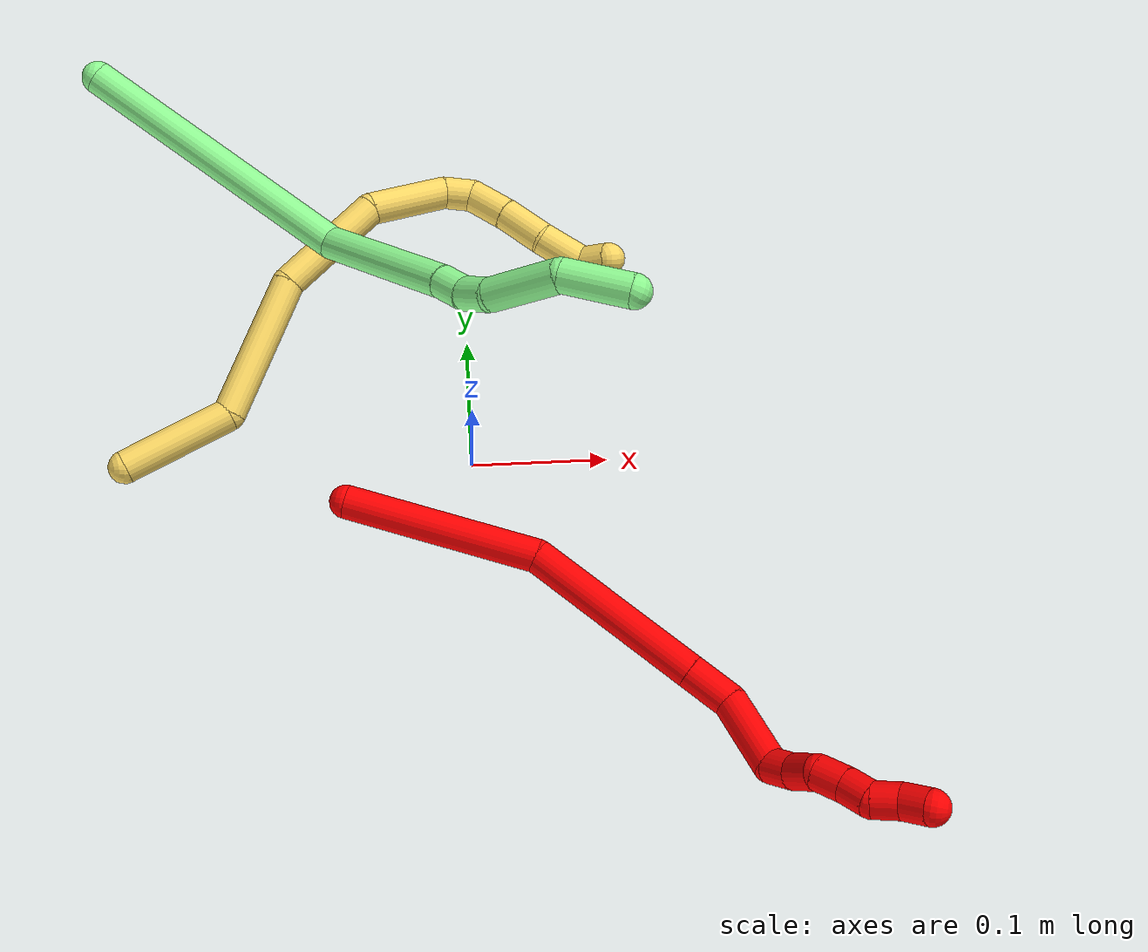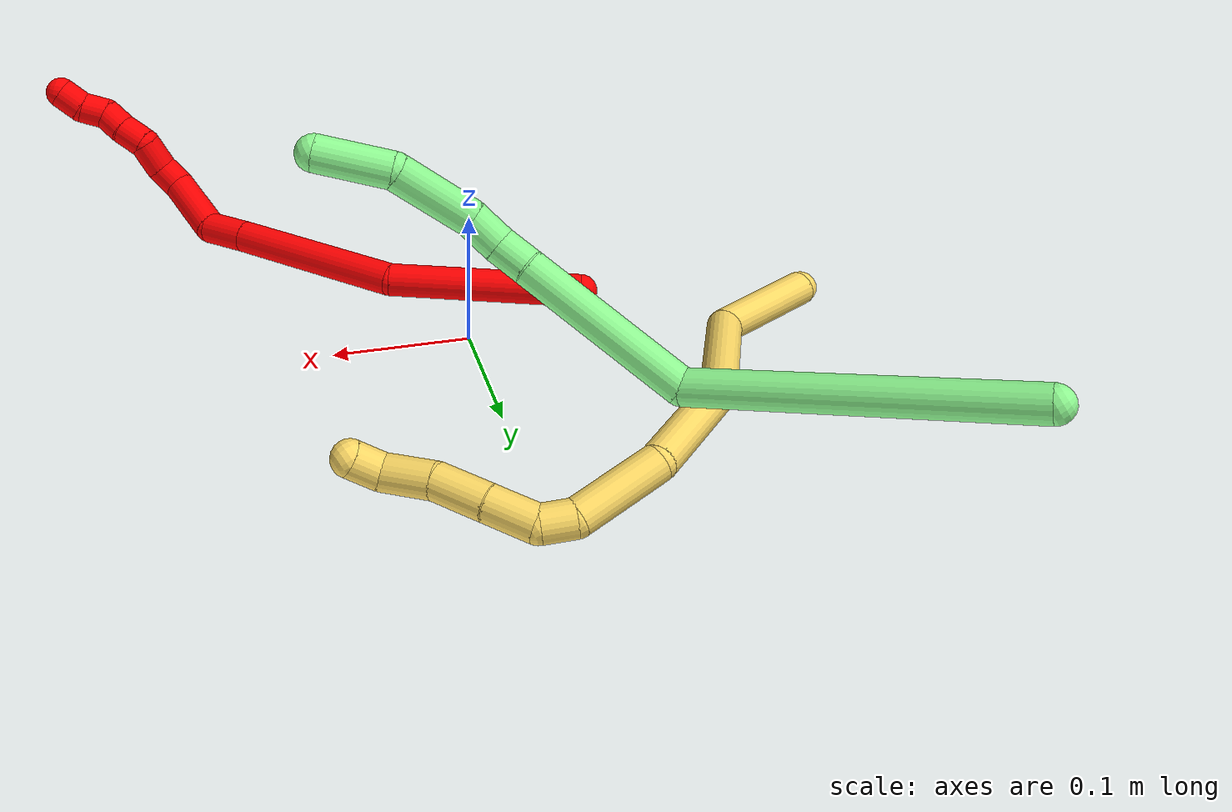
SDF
<sdf version="1.7">
 <world name="default">
  <model name="2">
   <static>0</static>
   <link name="2">
    <collision name="collision-cylinder-e_1_1_4">
     <pose>0.017081 -0.0007 0.070695 0.009907 0.237054 0.00118</pose>
     <geometry><cylinder><radius>0.0125</radius><length>0.145466</length></cylinder></geometry>
     <surface>
      <friction><ode><mu>1.16</mu><mu2>1.16</mu2><slip1>0</slip1><slip2>0</slip2></ode></friction>
      <contact><ode><kp>1e+06</kp><kd>1</kd><max_vel>0</max_vel><min_depth>0.001</min_depth></ode></contact>
     </surface>
    </collision>
    <visual name="visual-cylinder-e_1_1_4">
     <pose>0.017081 -0.0007 0.070695 0.009907 0.237054 0.00118</pose>
     <geometry><cylinder><radius>0.0125</radius><length>0.145466</length></cylinder></geometry>
     <material><ambient>1 0 0 1</ambient></material>
    </visual>
    <collision name="collision-cylinder-e_2_4_5">
     <pose>0.050827 -0.027881 0.202049 0.411603 0.246675 0.051746</pose>
     <geometry><cylinder><radius>0.0125</radius><length>0.136505</length></cylinder></geometry>
     <surface>
      <friction><ode><mu>1.16</mu><mu2>1.16</mu2><slip1>0</slip1><slip2>0</slip2></ode></friction>
      <contact><ode><kp>1e+06</kp><kd>1</kd><max_vel>0</max_vel><min_depth>0.001</min_depth></ode></contact>
     </surface>
    </collision>
    <visual name="visual-cylinder-e_2_4_5">
     <pose>0.050827 -0.027881 0.202049 0.411603 0.246675 0.051746</pose>
     <geometry><cylinder><radius>0.0125</radius><length>0.136505</length></cylinder></geometry>
     <material><ambient>1 0 0 1</ambient></material>
    </visual>
    <collision name="collision-cylinder-e_3_5_6">
     <pose>0.072092 -0.060858 0.277934 0.403345 0.270946 0.055722</pose>
     <geometry><cylinder><radius>0.0125</radius><length>0.034363</length></cylinder></geometry>
     <surface>
      <friction><ode><mu>1.16</mu><mu2>1.16</mu2><slip1>0</slip1><slip2>0</slip2></ode></friction>
      <contact><ode><kp>1e+06</kp><kd>1</kd><max_vel>0</max_vel><min_depth>0.001</min_depth></ode></contact>
     </surface>
    </collision>
    <visual name="visual-cylinder-e_3_5_6">
     <pose>0.072092 -0.060858 0.277934 0.403345 0.270946 0.055722</pose>
     <geometry><cylinder><radius>0.0125</radius><length>0.034363</length></cylinder></geometry>
     <material><ambient>1 0 0 1</ambient></material>
    </visual>
    <collision name="collision-cylinder-e_4_6_7">
     <pose>0.075146 -0.088302 0.311835 0.842677 -0.054969 -0.024641</pose>
     <geometry><cylinder><radius>0.0125</radius><length>0.056209</length></cylinder></geometry>
     <surface>
      <friction><ode><mu>1.16</mu><mu2>1.16</mu2><slip1>0</slip1><slip2>0</slip2></ode></friction>
      <contact><ode><kp>1e+06</kp><kd>1</kd><max_vel>0</max_vel><min_depth>0.001</min_depth></ode></contact>
     </surface>
    </collision>
    <visual name="visual-cylinder-e_4_6_7">
     <pose>0.075146 -0.088302 0.311835 0.842677 -0.054969 -0.024641</pose>
     <geometry><cylinder><radius>0.0125</radius><length>0.056209</length></cylinder></geometry>
     <material><ambient>1 0 0 1</ambient></material>
    </visual>
    <collision name="collision-cylinder-e_5_7_8">
     <pose>0.068822 -0.111784 0.33939 0.278114 -0.477591 -0.068118</pose>
     <geometry><cylinder><radius>0.0125</radius><length>0.020798</length></cylinder></geometry>
     <surface>
      <friction><ode><mu>1.16</mu><mu2>1.16</mu2><slip1>0</slip1><slip2>0</slip2></ode></friction>
      <contact><ode><kp>1e+06</kp><kd>1</kd><max_vel>0</max_vel><min_depth>0.001</min_depth></ode></contact>
     </surface>
    </collision>
    <visual name="visual-cylinder-e_5_7_8">
     <pose>0.068822 -0.111784 0.33939 0.278114 -0.477591 -0.068118</pose>
     <geometry><cylinder><radius>0.0125</radius><length>0.020798</length></cylinder></geometry>
     <material><ambient>1 0 0 1</ambient></material>
    </visual>
    <collision name="collision-cylinder-e_6_8_9">
     <pose>0.055403 -0.116249 0.35684 0.221501 -0.777041 -0.090976</pose>
     <geometry><cylinder><radius>0.0125</radius><length>0.024641</length></cylinder></geometry>
     <surface>
      <friction><ode><mu>1.16</mu><mu2>1.16</mu2><slip1>0</slip1><slip2>0</slip2></ode></friction>
      <contact><ode><kp>1e+06</kp><kd>1</kd><max_vel>0</max_vel><min_depth>0.001</min_depth></ode></contact>
     </surface>
    </collision>
    <visual name="visual-cylinder-e_6_8_9">
     <pose>0.055403 -0.116249 0.35684 0.221501 -0.777041 -0.090976</pose>
     <geometry><cylinder><radius>0.0125</radius><length>0.024641</length></cylinder></geometry>
     <material><ambient>1 0 0 1</ambient></material>
    </visual>
    <collision name="collision-cylinder-e_7_9_10">
     <pose>0.044697 -0.121491 0.37547 0.31801 -0.19276 -0.031004</pose>
     <geometry><cylinder><radius>0.0125</radius><length>0.021581</length></cylinder></geometry>
     <surface>
      <friction><ode><mu>1.16</mu><mu2>1.16</mu2><slip1>0</slip1><slip2>0</slip2></ode></friction>
      <contact><ode><kp>1e+06</kp><kd>1</kd><max_vel>0</max_vel><min_depth>0.001</min_depth></ode></contact>
     </surface>
    </collision>
    <visual name="visual-cylinder-e_7_9_10">
     <pose>0.044697 -0.121491 0.37547 0.31801 -0.19276 -0.031004</pose>
     <geometry><cylinder><radius>0.0125</radius><length>0.021581</length></cylinder></geometry>
     <material><ambient>1 0 0 1</ambient></material>
    </visual>
    <collision name="collision-cylinder-e_8_10_11">
     <pose>0.040068 -0.129063 0.394318 0.451461 -0.256557 -0.059225</pose>
     <geometry><cylinder><radius>0.0125</radius><length>0.020194</length></cylinder></geometry>
     <surface>
      <friction><ode><mu>1.16</mu><mu2>1.16</mu2><slip1>0</slip1><slip2>0</slip2></ode></friction>
      <contact><ode><kp>1e+06</kp><kd>1</kd><max_vel>0</max_vel><min_depth>0.001</min_depth></ode></contact>
     </surface>
    </collision>
    <visual name="visual-cylinder-e_8_10_11">
     <pose>0.040068 -0.129063 0.394318 0.451461 -0.256557 -0.059225</pose>
     <geometry><cylinder><radius>0.0125</radius><length>0.020194</length></cylinder></geometry>
     <material><ambient>1 0 0 1</ambient></material>
    </visual>
    <collision name="collision-cylinder-e_9_11_12">
     <pose>0.03654 -0.132131 0.412994 -0.120107 -0.09667 0.005817</pose>
     <geometry><cylinder><radius>0.0125</radius><length>0.020013</length></cylinder></geometry>
     <surface>
      <friction><ode><mu>1.16</mu><mu2>1.16</mu2><slip1>0</slip1><slip2>0</slip2></ode></friction>
      <contact><ode><kp>1e+06</kp><kd>1</kd><max_vel>0</max_vel><min_depth>0.001</min_depth></ode></contact>
     </surface>
    </collision>
    <visual name="visual-cylinder-e_9_11_12">
     <pose>0.03654 -0.132131 0.412994 -0.120107 -0.09667 0.005817</pose>
     <geometry><cylinder><radius>0.0125</radius><length>0.020013</length></cylinder></geometry>
     <material><ambient>1 0 0 1</ambient></material>
    </visual>
    <collision name="collision-cylinder-e_10_12_2">
     <pose>0.032032 -0.132432 0.432237 0.158381 -0.35781 -0.028699</pose>
     <geometry><cylinder><radius>0.0125</radius><length>0.020229</length></cylinder></geometry>
     <surface>
      <friction><ode><mu>1.16</mu><mu2>1.16</mu2><slip1>0</slip1><slip2>0</slip2></ode></friction>
      <contact><ode><kp>1e+06</kp><kd>1</kd><max_vel>0</max_vel><min_depth>0.001</min_depth></ode></contact>
     </surface>
    </collision>
    <visual name="visual-cylinder-e_10_12_2">
     <pose>0.032032 -0.132432 0.432237 0.158381 -0.35781 -0.028699</pose>
     <geometry><cylinder><radius>0.0125</radius><length>0.020229</length></cylinder></geometry>
     <material><ambient>1 0 0 1</ambient></material>
    </visual>
    <collision name="collision-sphere-2">
     <pose>0.028489 -0.133926 0.441593 0 -0 0</pose>
     <geometry><sphere><radius>0.0125</radius></sphere></geometry>
     <surface>
      <friction><ode><mu>1.16</mu><mu2>1.16</mu2><slip1>0</slip1><slip2>0</slip2></ode></friction>
      <contact><ode><kp>1e+06</kp><kd>1</kd><max_vel>0</max_vel><min_depth>0.001</min_depth></ode></contact>
     </surface>
    </collision>
    <visual name="visual-sphere-2">
     <pose>0.028489 -0.133926 0.441593 0 -0 0</pose>
     <geometry><sphere><radius>0.0125</radius></sphere></geometry>
     <material><ambient>1 0 0 1</ambient></material>
    </visual>
    <collision name="collision-sphere-12">
     <pose>0.035574 -0.130938 0.422882 0 -0 0</pose>
     <geometry><sphere><radius>0.0125</radius></sphere></geometry>
     <surface>
      <friction><ode><mu>1.16</mu><mu2>1.16</mu2><slip1>0</slip1><slip2>0</slip2></ode></friction>
      <contact><ode><kp>1e+06</kp><kd>1</kd><max_vel>0</max_vel><min_depth>0.001</min_depth></ode></contact>
     </surface>
    </collision>
    <visual name="visual-sphere-12">
     <pose>0.035574 -0.130938 0.422882 0 -0 0</pose>
     <geometry><sphere><radius>0.0125</radius></sphere></geometry>
     <material><ambient>1 0 0 1</ambient></material>
    </visual>
    <collision name="collision-sphere-11">
     <pose>0.037506 -0.133324 0.403106 0 -0 0</pose>
     <geometry><sphere><radius>0.0125</radius></sphere></geometry>
     <surface>
      <friction><ode><mu>1.16</mu><mu2>1.16</mu2><slip1>0</slip1><slip2>0</slip2></ode></friction>
      <contact><ode><kp>1e+06</kp><kd>1</kd><max_vel>0</max_vel><min_depth>0.001</min_depth></ode></contact>
     </surface>
    </collision>
    <visual name="visual-sphere-11">
     <pose>0.037506 -0.133324 0.403106 0 -0 0</pose>
     <geometry><sphere><radius>0.0125</radius></sphere></geometry>
     <material><ambient>1 0 0 1</ambient></material>
    </visual>
    <collision name="collision-sphere-10">
     <pose>0.04263 -0.124802 0.38553 0 -0 0</pose>
     <geometry><sphere><radius>0.0125</radius></sphere></geometry>
     <surface>
      <friction><ode><mu>1.16</mu><mu2>1.16</mu2><slip1>0</slip1><slip2>0</slip2></ode></friction>
      <contact><ode><kp>1e+06</kp><kd>1</kd><max_vel>0</max_vel><min_depth>0.001</min_depth></ode></contact>
     </surface>
    </collision>
    <visual name="visual-sphere-10">
     <pose>0.04263 -0.124802 0.38553 0 -0 0</pose>
     <geometry><sphere><radius>0.0125</radius></sphere></geometry>
     <material><ambient>1 0 0 1</ambient></material>
    </visual>
    <collision name="collision-sphere-9">
     <pose>0.046764 -0.118179 0.36541 0 -0 0</pose>
     <geometry><sphere><radius>0.0125</radius></sphere></geometry>
     <surface>
      <friction><ode><mu>1.16</mu><mu2>1.16</mu2><slip1>0</slip1><slip2>0</slip2></ode></friction>
      <contact><ode><kp>1e+06</kp><kd>1</kd><max_vel>0</max_vel><min_depth>0.001</min_depth></ode></contact>
     </surface>
    </collision>
    <visual name="visual-sphere-9">
     <pose>0.046764 -0.118179 0.36541 0 -0 0</pose>
     <geometry><sphere><radius>0.0125</radius></sphere></geometry>
     <material><ambient>1 0 0 1</ambient></material>
    </visual>
    <collision name="collision-sphere-4">
     <pose>0.034161 -0.001401 0.14139 0 -0 0</pose>
     <geometry><sphere><radius>0.0125</radius></sphere></geometry>
     <surface>
      <friction><ode><mu>1.16</mu><mu2>1.16</mu2><slip1>0</slip1><slip2>0</slip2></ode></friction>
      <contact><ode><kp>1e+06</kp><kd>1</kd><max_vel>0</max_vel><min_depth>0.001</min_depth></ode></contact>
     </surface>
    </collision>
    <visual name="visual-sphere-4">
     <pose>0.034161 -0.001401 0.14139 0 -0 0</pose>
     <geometry><sphere><radius>0.0125</radius></sphere></geometry>
     <material><ambient>1 0 0 1</ambient></material>
    </visual>
    <collision name="collision-sphere-1">
     <geometry><sphere><radius>0.0125</radius></sphere></geometry>
     <surface>
      <friction><ode><mu>1.16</mu><mu2>1.16</mu2><slip1>0</slip1><slip2>0</slip2></ode></friction>
      <contact><ode><kp>1e+06</kp><kd>1</kd><max_vel>0</max_vel><min_depth>0.001</min_depth></ode></contact>
     </surface>
    </collision>
    <visual name="visual-sphere-1">
     <geometry><sphere><radius>0.0125</radius></sphere></geometry>
     <material><ambient>1 0 0 1</ambient></material>
    </visual>
    <collision name="collision-sphere-8">
     <pose>0.064042 -0.11432 0.348271 0 -0 0</pose>
     <geometry><sphere><radius>0.0125</radius></sphere></geometry>
     <surface>
      <friction><ode><mu>1.16</mu><mu2>1.16</mu2><slip1>0</slip1><slip2>0</slip2></ode></friction>
      <contact><ode><kp>1e+06</kp><kd>1</kd><max_vel>0</max_vel><min_depth>0.001</min_depth></ode></contact>
     </surface>
    </collision>
    <visual name="visual-sphere-8">
     <pose>0.064042 -0.11432 0.348271 0 -0 0</pose>
     <geometry><sphere><radius>0.0125</radius></sphere></geometry>
     <material><ambient>1 0 0 1</ambient></material>
    </visual>
    <collision name="collision-sphere-5">
     <pose>0.067493 -0.054361 0.262708 0 -0 0</pose>
     <geometry><sphere><radius>0.0125</radius></sphere></geometry>
     <surface>
      <friction><ode><mu>1.16</mu><mu2>1.16</mu2><slip1>0</slip1><slip2>0</slip2></ode></friction>
      <contact><ode><kp>1e+06</kp><kd>1</kd><max_vel>0</max_vel><min_depth>0.001</min_depth></ode></contact>
     </surface>
    </collision>
    <visual name="visual-sphere-5">
     <pose>0.067493 -0.054361 0.262708 0 -0 0</pose>
     <geometry><sphere><radius>0.0125</radius></sphere></geometry>
     <material><ambient>1 0 0 1</ambient></material>
    </visual>
    <collision name="collision-sphere-6">
     <pose>0.07669 -0.067356 0.29316 0 -0 0</pose>
     <geometry><sphere><radius>0.0125</radius></sphere></geometry>
     <surface>
      <friction><ode><mu>1.16</mu><mu2>1.16</mu2><slip1>0</slip1><slip2>0</slip2></ode></friction>
      <contact><ode><kp>1e+06</kp><kd>1</kd><max_vel>0</max_vel><min_depth>0.001</min_depth></ode></contact>
     </surface>
    </collision>
    <visual name="visual-sphere-6">
     <pose>0.07669 -0.067356 0.29316 0 -0 0</pose>
     <geometry><sphere><radius>0.0125</radius></sphere></geometry>
     <material><ambient>1 0 0 1</ambient></material>
    </visual>
    <collision name="collision-sphere-7">
     <pose>0.073602 -0.109248 0.330509 0 -0 0</pose>
     <geometry><sphere><radius>0.0125</radius></sphere></geometry>
     <surface>
      <friction><ode><mu>1.16</mu><mu2>1.16</mu2><slip1>0</slip1><slip2>0</slip2></ode></friction>
      <contact><ode><kp>1e+06</kp><kd>1</kd><max_vel>0</max_vel><min_depth>0.001</min_depth></ode></contact>
     </surface>
    </collision>
    <visual name="visual-sphere-7">
     <pose>0.073602 -0.109248 0.330509 0 -0 0</pose>
     <geometry><sphere><radius>0.0125</radius></sphere></geometry>
     <material><ambient>1 0 0 1</ambient></material>
    </visual>
    <inertial>
     <pose>0.044147 -0.053407 0.22774 0 -0 0</pose>
     <mass>0.5</mass>
     <inertia>
      <ixx>0.000509</ixx>
      <ixy>0</ixy>
      <ixz>0</ixz>
      <iyy>0.000488</iyy>
      <iyz>0</iyz>
      <izz>2.6e-05</izz>
     </inertia>
    </inertial>
   </link>
   <pose>-0.093564 -0.029596 0.011491 -0.417653 1.31339 -0.732692</pose>
  </model>
  <model name="5">
   <static>0</static>
   <link name="5">
    <collision name="collision-cylinder-e_1_1_4">
     <pose>0.003102 0.017378 0.038913 -0.420007 0.072659 -0.015493</pose>
     <geometry><cylinder><radius>0.0125</radius><length>0.085461</length></cylinder></geometry>
     <surface>
      <friction><ode><mu>1.16</mu><mu2>1.16</mu2><slip1>0</slip1><slip2>0</slip2></ode></friction>
      <contact><ode><kp>1e+06</kp><kd>1</kd><max_vel>0</max_vel><min_depth>0.001</min_depth></ode></contact>
     </surface>
    </collision>
    <visual name="visual-cylinder-e_1_1_4">
     <pose>0.003102 0.017378 0.038913 -0.420007 0.072659 -0.015493</pose>
     <geometry><cylinder><radius>0.0125</radius><length>0.085461</length></cylinder></geometry>
     <material><ambient>1 0.858824 0.4 1</ambient></material>
    </visual>
    <collision name="collision-cylinder-e_2_4_5">
     <pose>0.039671 0.067335 0.1081 -0.822071 0.645108 -0.289319</pose>
     <geometry><cylinder><radius>0.0125</radius><length>0.111318</length></cylinder></geometry>
     <surface>
      <friction><ode><mu>1.16</mu><mu2>1.16</mu2><slip1>0</slip1><slip2>0</slip2></ode></friction>
      <contact><ode><kp>1e+06</kp><kd>1</kd><max_vel>0</max_vel><min_depth>0.001</min_depth></ode></contact>
     </surface>
    </collision>
    <visual name="visual-cylinder-e_2_4_5">
     <pose>0.039671 0.067335 0.1081 -0.822071 0.645108 -0.289319</pose>
     <geometry><cylinder><radius>0.0125</radius><length>0.111318</length></cylinder></geometry>
     <material><ambient>1 0.858824 0.4 1</ambient></material>
    </visual>
    <collision name="collision-cylinder-e_3_5_6">
     <pose>0.088772 0.120001 0.174683 -0.505291 0.360321 -0.093972</pose>
     <geometry><cylinder><radius>0.0125</radius><length>0.088686</length></cylinder></geometry>
     <surface>
      <friction><ode><mu>1.16</mu><mu2>1.16</mu2><slip1>0</slip1><slip2>0</slip2></ode></friction>
      <contact><ode><kp>1e+06</kp><kd>1</kd><max_vel>0</max_vel><min_depth>0.001</min_depth></ode></contact>
     </surface>
    </collision>
    <visual name="visual-cylinder-e_3_5_6">
     <pose>0.088772 0.120001 0.174683 -0.505291 0.360321 -0.093972</pose>
     <geometry><cylinder><radius>0.0125</radius><length>0.088686</length></cylinder></geometry>
     <material><ambient>1 0.858824 0.4 1</ambient></material>
    </visual>
    <collision name="collision-cylinder-e_4_6_7">
     <pose>0.105421 0.144696 0.242353 -0.145916 0.032011 -0.00234</pose>
     <geometry><cylinder><radius>0.0125</radius><length>0.063425</length></cylinder></geometry>
     <surface>
      <friction><ode><mu>1.16</mu><mu2>1.16</mu2><slip1>0</slip1><slip2>0</slip2></ode></friction>
      <contact><ode><kp>1e+06</kp><kd>1</kd><max_vel>0</max_vel><min_depth>0.001</min_depth></ode></contact>
     </surface>
    </collision>
    <visual name="visual-cylinder-e_4_6_7">
     <pose>0.105421 0.144696 0.242353 -0.145916 0.032011 -0.00234</pose>
     <geometry><cylinder><radius>0.0125</radius><length>0.063425</length></cylinder></geometry>
     <material><ambient>1 0.858824 0.4 1</ambient></material>
    </visual>
    <collision name="collision-cylinder-e_5_7_8">
     <pose>0.101678 0.150593 0.283842 -0.126508 -0.436055 0.028063</pose>
     <geometry><cylinder><radius>0.0125</radius><length>0.022531</length></cylinder></geometry>
     <surface>
      <friction><ode><mu>1.16</mu><mu2>1.16</mu2><slip1>0</slip1><slip2>0</slip2></ode></friction>
      <contact><ode><kp>1e+06</kp><kd>1</kd><max_vel>0</max_vel><min_depth>0.001</min_depth></ode></contact>
     </surface>
    </collision>
    <visual name="visual-cylinder-e_5_7_8">
     <pose>0.101678 0.150593 0.283842 -0.126508 -0.436055 0.028063</pose>
     <geometry><cylinder><radius>0.0125</radius><length>0.022531</length></cylinder></geometry>
     <material><ambient>1 0.858824 0.4 1</ambient></material>
    </visual>
    <collision name="collision-cylinder-e_6_8_9">
     <pose>0.082377 0.152958 0.30204 -0.132622 -1.06054 0.077828</pose>
     <geometry><cylinder><radius>0.0125</radius><length>0.033332</length></cylinder></geometry>
     <surface>
      <friction><ode><mu>1.16</mu><mu2>1.16</mu2><slip1>0</slip1><slip2>0</slip2></ode></friction>
      <contact><ode><kp>1e+06</kp><kd>1</kd><max_vel>0</max_vel><min_depth>0.001</min_depth></ode></contact>
     </surface>
    </collision>
    <visual name="visual-cylinder-e_6_8_9">
     <pose>0.082377 0.152958 0.30204 -0.132622 -1.06054 0.077828</pose>
     <geometry><cylinder><radius>0.0125</radius><length>0.033332</length></cylinder></geometry>
     <material><ambient>1 0.858824 0.4 1</ambient></material>
    </visual>
    <collision name="collision-cylinder-e_7_9_10">
     <pose>0.051699 0.153849 0.318523 0.021949 -1.08999 -0.013306</pose>
     <geometry><cylinder><radius>0.0125</radius><length>0.036397</length></cylinder></geometry>
     <surface>
      <friction><ode><mu>1.16</mu><mu2>1.16</mu2><slip1>0</slip1><slip2>0</slip2></ode></friction>
      <contact><ode><kp>1e+06</kp><kd>1</kd><max_vel>0</max_vel><min_depth>0.001</min_depth></ode></contact>
     </surface>
    </collision>
    <visual name="visual-cylinder-e_7_9_10">
     <pose>0.051699 0.153849 0.318523 0.021949 -1.08999 -0.013306</pose>
     <geometry><cylinder><radius>0.0125</radius><length>0.036397</length></cylinder></geometry>
     <material><ambient>1 0.858824 0.4 1</ambient></material>
    </visual>
    <collision name="collision-cylinder-e_8_10_11">
     <pose>0.021428 0.151836 0.338367 0.158673 -0.88467 -0.075276</pose>
     <geometry><cylinder><radius>0.0125</radius><length>0.03654</length></cylinder></geometry>
     <surface>
      <friction><ode><mu>1.16</mu><mu2>1.16</mu2><slip1>0</slip1><slip2>0</slip2></ode></friction>
      <contact><ode><kp>1e+06</kp><kd>1</kd><max_vel>0</max_vel><min_depth>0.001</min_depth></ode></contact>
     </surface>
    </collision>
    <visual name="visual-cylinder-e_8_10_11">
     <pose>0.021428 0.151836 0.338367 0.158673 -0.88467 -0.075276</pose>
     <geometry><cylinder><radius>0.0125</radius><length>0.03654</length></cylinder></geometry>
     <material><ambient>1 0.858824 0.4 1</ambient></material>
    </visual>
    <collision name="collision-cylinder-e_9_11_2">
     <pose>0.000686 0.156653 0.355849 -0.832077 -0.633816 0.287803</pose>
     <geometry><cylinder><radius>0.0125</radius><length>0.022311</length></cylinder></geometry>
     <surface>
      <friction><ode><mu>1.16</mu><mu2>1.16</mu2><slip1>0</slip1><slip2>0</slip2></ode></friction>
      <contact><ode><kp>1e+06</kp><kd>1</kd><max_vel>0</max_vel><min_depth>0.001</min_depth></ode></contact>
     </surface>
    </collision>
    <visual name="visual-cylinder-e_9_11_2">
     <pose>0.000686 0.156653 0.355849 -0.832077 -0.633816 0.287803</pose>
     <geometry><cylinder><radius>0.0125</radius><length>0.022311</length></cylinder></geometry>
     <material><ambient>1 0.858824 0.4 1</ambient></material>
    </visual>
    <collision name="collision-sphere-2">
     <pose>-0.00592 0.163298 0.361901 0 -0 0</pose>
     <geometry><sphere><radius>0.0125</radius></sphere></geometry>
     <surface>
      <friction><ode><mu>1.16</mu><mu2>1.16</mu2><slip1>0</slip1><slip2>0</slip2></ode></friction>
      <contact><ode><kp>1e+06</kp><kd>1</kd><max_vel>0</max_vel><min_depth>0.001</min_depth></ode></contact>
     </surface>
    </collision>
    <visual name="visual-sphere-2">
     <pose>-0.00592 0.163298 0.361901 0 -0 0</pose>
     <geometry><sphere><radius>0.0125</radius></sphere></geometry>
     <material><ambient>1 0.858824 0.4 1</ambient></material>
    </visual>
    <collision name="collision-sphere-11">
     <pose>0.007293 0.150007 0.349796 0 -0 0</pose>
     <geometry><sphere><radius>0.0125</radius></sphere></geometry>
     <surface>
      <friction><ode><mu>1.16</mu><mu2>1.16</mu2><slip1>0</slip1><slip2>0</slip2></ode></friction>
      <contact><ode><kp>1e+06</kp><kd>1</kd><max_vel>0</max_vel><min_depth>0.001</min_depth></ode></contact>
     </surface>
    </collision>
    <visual name="visual-sphere-11">
     <pose>0.007293 0.150007 0.349796 0 -0 0</pose>
     <geometry><sphere><radius>0.0125</radius></sphere></geometry>
     <material><ambient>1 0.858824 0.4 1</ambient></material>
    </visual>
    <collision name="collision-sphere-10">
     <pose>0.035564 0.153665 0.326937 0 -0 0</pose>
     <geometry><sphere><radius>0.0125</radius></sphere></geometry>
     <surface>
      <friction><ode><mu>1.16</mu><mu2>1.16</mu2><slip1>0</slip1><slip2>0</slip2></ode></friction>
      <contact><ode><kp>1e+06</kp><kd>1</kd><max_vel>0</max_vel><min_depth>0.001</min_depth></ode></contact>
     </surface>
    </collision>
    <visual name="visual-sphere-10">
     <pose>0.035564 0.153665 0.326937 0 -0 0</pose>
     <geometry><sphere><radius>0.0125</radius></sphere></geometry>
     <material><ambient>1 0.858824 0.4 1</ambient></material>
    </visual>
    <collision name="collision-sphere-9">
     <pose>0.067834 0.154034 0.310108 0 -0 0</pose>
     <geometry><sphere><radius>0.0125</radius></sphere></geometry>
     <surface>
      <friction><ode><mu>1.16</mu><mu2>1.16</mu2><slip1>0</slip1><slip2>0</slip2></ode></friction>
      <contact><ode><kp>1e+06</kp><kd>1</kd><max_vel>0</max_vel><min_depth>0.001</min_depth></ode></contact>
     </surface>
    </collision>
    <visual name="visual-sphere-9">
     <pose>0.067834 0.154034 0.310108 0 -0 0</pose>
     <geometry><sphere><radius>0.0125</radius></sphere></geometry>
     <material><ambient>1 0.858824 0.4 1</ambient></material>
    </visual>
    <collision name="collision-sphere-4">
     <pose>0.006204 0.034756 0.077827 0 -0 0</pose>
     <geometry><sphere><radius>0.0125</radius></sphere></geometry>
     <surface>
      <friction><ode><mu>1.16</mu><mu2>1.16</mu2><slip1>0</slip1><slip2>0</slip2></ode></friction>
      <contact><ode><kp>1e+06</kp><kd>1</kd><max_vel>0</max_vel><min_depth>0.001</min_depth></ode></contact>
     </surface>
    </collision>
    <visual name="visual-sphere-4">
     <pose>0.006204 0.034756 0.077827 0 -0 0</pose>
     <geometry><sphere><radius>0.0125</radius></sphere></geometry>
     <material><ambient>1 0.858824 0.4 1</ambient></material>
    </visual>
    <collision name="collision-sphere-1">
     <geometry><sphere><radius>0.0125</radius></sphere></geometry>
     <surface>
      <friction><ode><mu>1.16</mu><mu2>1.16</mu2><slip1>0</slip1><slip2>0</slip2></ode></friction>
      <contact><ode><kp>1e+06</kp><kd>1</kd><max_vel>0</max_vel><min_depth>0.001</min_depth></ode></contact>
     </surface>
    </collision>
    <visual name="visual-sphere-1">
     <geometry><sphere><radius>0.0125</radius></sphere></geometry>
     <material><ambient>1 0.858824 0.4 1</ambient></material>
    </visual>
    <collision name="collision-sphere-8">
     <pose>0.09692 0.151881 0.293972 0 -0 0</pose>
     <geometry><sphere><radius>0.0125</radius></sphere></geometry>
     <surface>
      <friction><ode><mu>1.16</mu><mu2>1.16</mu2><slip1>0</slip1><slip2>0</slip2></ode></friction>
      <contact><ode><kp>1e+06</kp><kd>1</kd><max_vel>0</max_vel><min_depth>0.001</min_depth></ode></contact>
     </surface>
    </collision>
    <visual name="visual-sphere-8">
     <pose>0.09692 0.151881 0.293972 0 -0 0</pose>
     <geometry><sphere><radius>0.0125</radius></sphere></geometry>
     <material><ambient>1 0.858824 0.4 1</ambient></material>
    </visual>
    <collision name="collision-sphere-5">
     <pose>0.073138 0.099915 0.138374 0 -0 0</pose>
     <geometry><sphere><radius>0.0125</radius></sphere></geometry>
     <surface>
      <friction><ode><mu>1.16</mu><mu2>1.16</mu2><slip1>0</slip1><slip2>0</slip2></ode></friction>
      <contact><ode><kp>1e+06</kp><kd>1</kd><max_vel>0</max_vel><min_depth>0.001</min_depth></ode></contact>
     </surface>
    </collision>
    <visual name="visual-sphere-5">
     <pose>0.073138 0.099915 0.138374 0 -0 0</pose>
     <geometry><sphere><radius>0.0125</radius></sphere></geometry>
     <material><ambient>1 0.858824 0.4 1</ambient></material>
    </visual>
    <collision name="collision-sphere-6">
     <pose>0.104406 0.140087 0.210993 0 -0 0</pose>
     <geometry><sphere><radius>0.0125</radius></sphere></geometry>
     <surface>
      <friction><ode><mu>1.16</mu><mu2>1.16</mu2><slip1>0</slip1><slip2>0</slip2></ode></friction>
      <contact><ode><kp>1e+06</kp><kd>1</kd><max_vel>0</max_vel><min_depth>0.001</min_depth></ode></contact>
     </surface>
    </collision>
    <visual name="visual-sphere-6">
     <pose>0.104406 0.140087 0.210993 0 -0 0</pose>
     <geometry><sphere><radius>0.0125</radius></sphere></geometry>
     <material><ambient>1 0.858824 0.4 1</ambient></material>
    </visual>
    <collision name="collision-sphere-7">
     <pose>0.106436 0.149305 0.273712 0 -0 0</pose>
     <geometry><sphere><radius>0.0125</radius></sphere></geometry>
     <surface>
      <friction><ode><mu>1.16</mu><mu2>1.16</mu2><slip1>0</slip1><slip2>0</slip2></ode></friction>
      <contact><ode><kp>1e+06</kp><kd>1</kd><max_vel>0</max_vel><min_depth>0.001</min_depth></ode></contact>
     </surface>
    </collision>
    <visual name="visual-sphere-7">
     <pose>0.106436 0.149305 0.273712 0 -0 0</pose>
     <geometry><sphere><radius>0.0125</radius></sphere></geometry>
     <material><ambient>1 0.858824 0.4 1</ambient></material>
    </visual>
    <inertial>
     <pose>0.053914 0.103869 0.189163 0 -0 0</pose>
     <mass>0.5</mass>
     <inertia>
      <ixx>0.000205</ixx>
      <ixy>0</ixy>
      <ixz>0</ixz>
      <iyy>0.00022</iyy>
      <iyz>0</iyz>
      <izz>-0.00018</izz>
     </inertia>
    </inertial>
   </link>
   <pose>-0.255884 0.004661 0.012343 1.96152 0.286349 1.96568</pose>
  </model>
  <model name="13">
   <static>0</static>
   <link name="13">
    <collision name="collision-cylinder-e_1_1_4">
     <pose>0.046669 -0.029958 0.093171 0.311101 0.444955 0.070921</pose>
     <geometry><cylinder><radius>0.0125</radius><length>0.216853</length></cylinder></geometry>
     <surface>
      <friction><ode><mu>1.16</mu><mu2>1.16</mu2><slip1>0</slip1><slip2>0</slip2></ode></friction>
      <contact><ode><kp>1e+06</kp><kd>1</kd><max_vel>0</max_vel><min_depth>0.001</min_depth></ode></contact>
     </surface>
    </collision>
    <visual name="visual-cylinder-e_1_1_4">
     <pose>0.046669 -0.029958 0.093171 0.311101 0.444955 0.070921</pose>
     <geometry><cylinder><radius>0.0125</radius><length>0.216853</length></cylinder></geometry>
     <material><ambient>0.564706 0.984314 0.572549 1</ambient></material>
    </visual>
    <collision name="collision-cylinder-e_2_4_5">
     <pose>0.124097 -0.107648 0.209297 1.12253 0.52616 0.335471</pose>
     <geometry><cylinder><radius>0.0125</radius><length>0.122496</length></cylinder></geometry>
     <surface>
      <friction><ode><mu>1.16</mu><mu2>1.16</mu2><slip1>0</slip1><slip2>0</slip2></ode></friction>
      <contact><ode><kp>1e+06</kp><kd>1</kd><max_vel>0</max_vel><min_depth>0.001</min_depth></ode></contact>
     </surface>
    </collision>
    <visual name="visual-cylinder-e_2_4_5">
     <pose>0.124097 -0.107648 0.209297 1.12253 0.52616 0.335471</pose>
     <geometry><cylinder><radius>0.0125</radius><length>0.122496</length></cylinder></geometry>
     <material><ambient>0.564706 0.984314 0.572549 1</ambient></material>
    </visual>
    <collision name="collision-cylinder-e_3_5_6">
     <pose>0.161788 -0.163761 0.236966 1.05845 0.62451 0.37322</pose>
     <geometry><cylinder><radius>0.0125</radius><length>0.02371</length></cylinder></geometry>
     <surface>
      <friction><ode><mu>1.16</mu><mu2>1.16</mu2><slip1>0</slip1><slip2>0</slip2></ode></friction>
      <contact><ode><kp>1e+06</kp><kd>1</kd><max_vel>0</max_vel><min_depth>0.001</min_depth></ode></contact>
     </surface>
    </collision>
    <visual name="visual-cylinder-e_3_5_6">
     <pose>0.161788 -0.163761 0.236966 1.05845 0.62451 0.37322</pose>
     <geometry><cylinder><radius>0.0125</radius><length>0.02371</length></cylinder></geometry>
     <material><ambient>0.564706 0.984314 0.572549 1</ambient></material>
    </visual>
    <collision name="collision-cylinder-e_4_6_7">
     <pose>0.173502 -0.183785 0.24489 1.30183 0.377095 0.288646</pose>
     <geometry><cylinder><radius>0.0125</radius><length>0.025977</length></cylinder></geometry>
     <surface>
      <friction><ode><mu>1.16</mu><mu2>1.16</mu2><slip1>0</slip1><slip2>0</slip2></ode></friction>
      <contact><ode><kp>1e+06</kp><kd>1</kd><max_vel>0</max_vel><min_depth>0.001</min_depth></ode></contact>
     </surface>
    </collision>
    <visual name="visual-cylinder-e_4_6_7">
     <pose>0.173502 -0.183785 0.24489 1.30183 0.377095 0.288646</pose>
     <geometry><cylinder><radius>0.0125</radius><length>0.025977</length></cylinder></geometry>
     <material><ambient>0.564706 0.984314 0.572549 1</ambient></material>
    </visual>
    <collision name="collision-cylinder-e_5_7_8">
     <pose>0.179451 -0.223394 0.257762 1.2381 0.039376 0.028056</pose>
     <geometry><cylinder><radius>0.0125</radius><length>0.059225</length></cylinder></geometry>
     <surface>
      <friction><ode><mu>1.16</mu><mu2>1.16</mu2><slip1>0</slip1><slip2>0</slip2></ode></friction>
      <contact><ode><kp>1e+06</kp><kd>1</kd><max_vel>0</max_vel><min_depth>0.001</min_depth></ode></contact>
     </surface>
    </collision>
    <visual name="visual-cylinder-e_5_7_8">
     <pose>0.179451 -0.223394 0.257762 1.2381 0.039376 0.028056</pose>
     <geometry><cylinder><radius>0.0125</radius><length>0.059225</length></cylinder></geometry>
     <material><ambient>0.564706 0.984314 0.572549 1</ambient></material>
    </visual>
    <collision name="collision-cylinder-e_6_8_2">
     <pose>0.18685 -0.268369 0.285895 0.744268 0.24337 0.095391</pose>
     <geometry><cylinder><radius>0.0125</radius><length>0.051739</length></cylinder></geometry>
     <surface>
      <friction><ode><mu>1.16</mu><mu2>1.16</mu2><slip1>0</slip1><slip2>0</slip2></ode></friction>
      <contact><ode><kp>1e+06</kp><kd>1</kd><max_vel>0</max_vel><min_depth>0.001</min_depth></ode></contact>
     </surface>
    </collision>
    <visual name="visual-cylinder-e_6_8_2">
     <pose>0.18685 -0.268369 0.285895 0.744268 0.24337 0.095391</pose>
     <geometry><cylinder><radius>0.0125</radius><length>0.051739</length></cylinder></geometry>
     <material><ambient>0.564706 0.984314 0.572549 1</ambient></material>
    </visual>
    <collision name="collision-sphere-2">
     <pose>0.193084 -0.285378 0.304363 0 -0 0</pose>
     <geometry><sphere><radius>0.0125</radius></sphere></geometry>
     <surface>
      <friction><ode><mu>1.16</mu><mu2>1.16</mu2><slip1>0</slip1><slip2>0</slip2></ode></friction>
      <contact><ode><kp>1e+06</kp><kd>1</kd><max_vel>0</max_vel><min_depth>0.001</min_depth></ode></contact>
     </surface>
    </collision>
    <visual name="visual-sphere-2">
     <pose>0.193084 -0.285378 0.304363 0 -0 0</pose>
     <geometry><sphere><radius>0.0125</radius></sphere></geometry>
     <material><ambient>0.564706 0.984314 0.572549 1</ambient></material>
    </visual>
    <collision name="collision-sphere-4">
     <pose>0.093337 -0.059917 0.186342 0 -0 0</pose>
     <geometry><sphere><radius>0.0125</radius></sphere></geometry>
     <surface>
      <friction><ode><mu>1.16</mu><mu2>1.16</mu2><slip1>0</slip1><slip2>0</slip2></ode></friction>
      <contact><ode><kp>1e+06</kp><kd>1</kd><max_vel>0</max_vel><min_depth>0.001</min_depth></ode></contact>
     </surface>
    </collision>
    <visual name="visual-sphere-4">
     <pose>0.093337 -0.059917 0.186342 0 -0 0</pose>
     <geometry><sphere><radius>0.0125</radius></sphere></geometry>
     <material><ambient>0.564706 0.984314 0.572549 1</ambient></material>
    </visual>
    <collision name="collision-sphere-1">
     <geometry><sphere><radius>0.0125</radius></sphere></geometry>
     <surface>
      <friction><ode><mu>1.16</mu><mu2>1.16</mu2><slip1>0</slip1><slip2>0</slip2></ode></friction>
      <contact><ode><kp>1e+06</kp><kd>1</kd><max_vel>0</max_vel><min_depth>0.001</min_depth></ode></contact>
     </surface>
    </collision>
    <visual name="visual-sphere-1">
     <geometry><sphere><radius>0.0125</radius></sphere></geometry>
     <material><ambient>0.564706 0.984314 0.572549 1</ambient></material>
    </visual>
    <collision name="collision-sphere-8">
     <pose>0.180616 -0.251361 0.267426 0 -0 0</pose>
     <geometry><sphere><radius>0.0125</radius></sphere></geometry>
     <surface>
      <friction><ode><mu>1.16</mu><mu2>1.16</mu2><slip1>0</slip1><slip2>0</slip2></ode></friction>
      <contact><ode><kp>1e+06</kp><kd>1</kd><max_vel>0</max_vel><min_depth>0.001</min_depth></ode></contact>
     </surface>
    </collision>
    <visual name="visual-sphere-8">
     <pose>0.180616 -0.251361 0.267426 0 -0 0</pose>
     <geometry><sphere><radius>0.0125</radius></sphere></geometry>
     <material><ambient>0.564706 0.984314 0.572549 1</ambient></material>
    </visual>
    <collision name="collision-sphere-5">
     <pose>0.154857 -0.155379 0.232251 0 -0 0</pose>
     <geometry><sphere><radius>0.0125</radius></sphere></geometry>
     <surface>
      <friction><ode><mu>1.16</mu><mu2>1.16</mu2><slip1>0</slip1><slip2>0</slip2></ode></friction>
      <contact><ode><kp>1e+06</kp><kd>1</kd><max_vel>0</max_vel><min_depth>0.001</min_depth></ode></contact>
     </surface>
    </collision>
    <visual name="visual-sphere-5">
     <pose>0.154857 -0.155379 0.232251 0 -0 0</pose>
     <geometry><sphere><radius>0.0125</radius></sphere></geometry>
     <material><ambient>0.564706 0.984314 0.572549 1</ambient></material>
    </visual>
    <collision name="collision-sphere-6">
     <pose>0.16872 -0.172143 0.241681 0 -0 0</pose>
     <geometry><sphere><radius>0.0125</radius></sphere></geometry>
     <surface>
      <friction><ode><mu>1.16</mu><mu2>1.16</mu2><slip1>0</slip1><slip2>0</slip2></ode></friction>
      <contact><ode><kp>1e+06</kp><kd>1</kd><max_vel>0</max_vel><min_depth>0.001</min_depth></ode></contact>
     </surface>
    </collision>
    <visual name="visual-sphere-6">
     <pose>0.16872 -0.172143 0.241681 0 -0 0</pose>
     <geometry><sphere><radius>0.0125</radius></sphere></geometry>
     <material><ambient>0.564706 0.984314 0.572549 1</ambient></material>
    </visual>
    <collision name="collision-sphere-7">
     <pose>0.178285 -0.195426 0.248099 0 -0 0</pose>
     <geometry><sphere><radius>0.0125</radius></sphere></geometry>
     <surface>
      <friction><ode><mu>1.16</mu><mu2>1.16</mu2><slip1>0</slip1><slip2>0</slip2></ode></friction>
      <contact><ode><kp>1e+06</kp><kd>1</kd><max_vel>0</max_vel><min_depth>0.001</min_depth></ode></contact>
     </surface>
    </collision>
    <visual name="visual-sphere-7">
     <pose>0.178285 -0.195426 0.248099 0 -0 0</pose>
     <geometry><sphere><radius>0.0125</radius></sphere></geometry>
     <material><ambient>0.564706 0.984314 0.572549 1</ambient></material>
    </visual>
    <inertial>
     <pose>0.10792 -0.110911 0.175761 0 -0 0</pose>
     <mass>0.5</mass>
     <inertia><ixx>0.001056</ixx><ixy>0</ixy><ixz>0</ixz><iyy>0.001011</iyy><iyz>0</iyz><izz>-4e-05</izz></inertia>
    </inertial>
   </link>
   <pose>-0.270733 0.288409 0.099193 -2.16901 -0.098088 -1.71621</pose>
  </model>
 </world>
</sdf>
